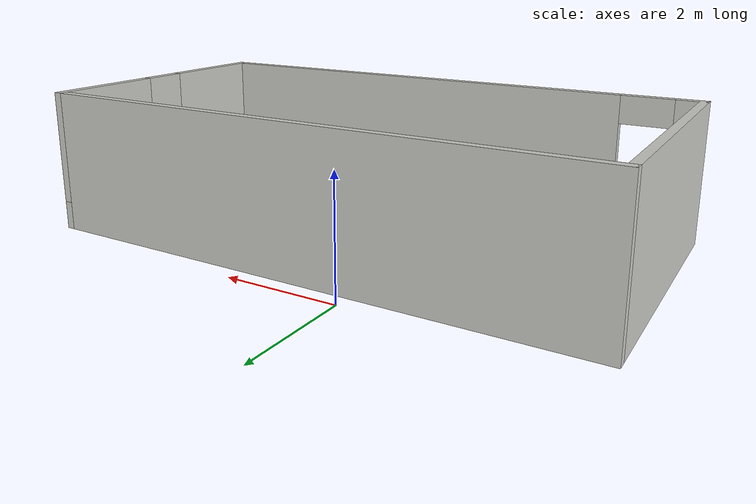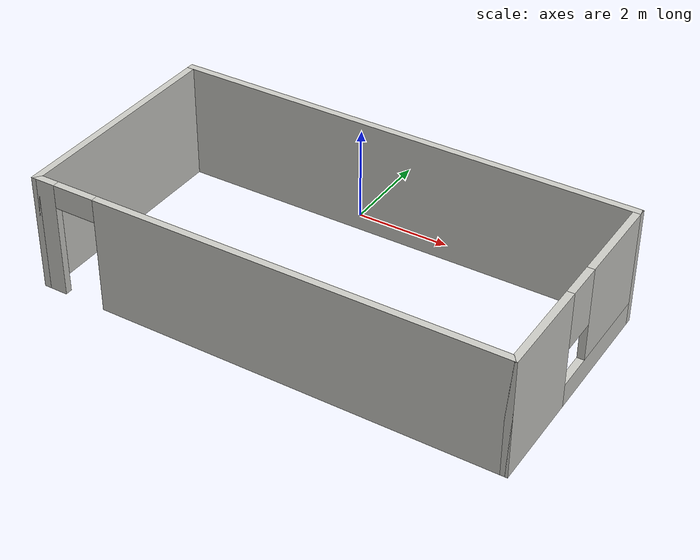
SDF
<?xml version='1.0'?>
<sdf version='1.6'>
  <model name='building'>
    <pose frame=''>1.085 -2.785 0 0 -0 0</pose>
    <link name='Wall_1'>
      <collision name='Wall_1_Collision'>
        <geometry>
          <box>
            <size>5 0.15 2.5</size>
          </box>
        </geometry>
        <pose frame=''>0 0 1.25 0 -0 0</pose>
      </collision>
      <visual name='Wall_1_Visual'>
        <pose frame=''>0 0 1.25 0 -0 0</pose>
        <geometry>
          <box>
            <size>5 0.15 2.5</size>
          </box>
        </geometry>
        <material>
          <script>
            <uri>file://media/materials/scripts/gazebo.material</uri>
            <name>Gazebo/CeilingTiled</name>
          </script>
          <ambient>0 0.333333 1 1</ambient>
        </material>
        <meta>
          <layer>0</layer>
        </meta>
      </visual>
      <pose frame=''>-4.925 0 0 0 0 -1.5708</pose>
    </link>
    <link name='Wall_2'>
      <pose frame=''>0 -2.425 0 0 -0 0</pose>
      <visual name='Wall_2_Visual_0'>
        <pose frame=''>-4.7375 0 1.25 0 -0 0</pose>
        <geometry>
          <box>
            <size>0.525 0.15 2.5</size>
          </box>
        </geometry>
        <material>
          <script>
            <uri>file://media/materials/scripts/gazebo.material</uri>
            <name>Gazebo/CeilingTiled</name>
          </script>
          <ambient>0 0.333333 1 1</ambient>
        </material>
        <meta>
          <layer>0</layer>
        </meta>
      </visual>
      <collision name='Wall_2_Collision_0'>
        <geometry>
          <box>
            <size>0.525 0.15 2.5</size>
          </box>
        </geometry>
        <pose frame=''>-4.7375 0 1.25 0 -0 0</pose>
      </collision>
      <visual name='Wall_2_Visual_1'>
        <pose frame=''>0.7125 0 1.25 0 -0 0</pose>
        <geometry>
          <box>
            <size>8.575 0.15 2.5</size>
          </box>
        </geometry>
        <material>
          <script>
            <uri>file://media/materials/scripts/gazebo.material</uri>
            <name>Gazebo/CeilingTiled</name>
          </script>
          <ambient>0 0.333333 1 1</ambient>
        </material>
        <meta>
          <layer>0</layer>
        </meta>
      </visual>
      <collision name='Wall_2_Collision_1'>
        <geometry>
          <box>
            <size>8.575 0.15 2.5</size>
          </box>
        </geometry>
        <pose frame=''>0.7125 0 1.25 0 -0 0</pose>
      </collision>
      <visual name='Wall_2_Visual_2'>
        <pose frame=''>-4.025 0 2.25 0 -0 0</pose>
        <geometry>
          <box>
            <size>0.9 0.15 0.5</size>
          </box>
        </geometry>
        <material>
          <script>
            <uri>file://media/materials/scripts/gazebo.material</uri>
            <name>Gazebo/CeilingTiled</name>
          </script>
          <ambient>0 0.333333 1 1</ambient>
        </material>
        <meta>
          <layer>0</layer>
        </meta>
      </visual>
      <collision name='Wall_2_Collision_2'>
        <geometry>
          <box>
            <size>0.9 0.15 0.5</size>
          </box>
        </geometry>
        <pose frame=''>-4.025 0 2.25 0 -0 0</pose>
      </collision>
    </link>
    <link name='Wall_3'>
      <pose frame=''>4.925 0 0 0 -0 1.5708</pose>
      <visual name='Wall_3_Visual_0'>
        <pose frame=''>-1.4475 0 1.25 0 -0 0</pose>
        <geometry>
          <box>
            <size>2.105 0.15 2.5</size>
          </box>
        </geometry>
        <material>
          <script>
            <uri>file://media/materials/scripts/gazebo.material</uri>
            <name>Gazebo/CeilingTiled</name>
          </script>
          <ambient>0 0.333333 1 1</ambient>
        </material>
        <meta>
          <layer>0</layer>
        </meta>
      </visual>
      <collision name='Wall_3_Collision_0'>
        <geometry>
          <box>
            <size>2.105 0.15 2.5</size>
          </box>
        </geometry>
        <pose frame=''>-1.4475 0 1.25 0 -0 0</pose>
      </collision>
      <visual name='Wall_3_Visual_1'>
        <pose frame=''>1.0525 0 0.25 0 -0 0</pose>
        <geometry>
          <box>
            <size>2.895 0.15 0.5</size>
          </box>
        </geometry>
        <material>
          <script>
            <uri>file://media/materials/scripts/gazebo.material</uri>
            <name>Gazebo/CeilingTiled</name>
          </script>
          <ambient>0 0.333333 1 1</ambient>
        </material>
        <meta>
          <layer>0</layer>
        </meta>
      </visual>
      <collision name='Wall_3_Collision_1'>
        <geometry>
          <box>
            <size>2.895 0.15 0.5</size>
          </box>
        </geometry>
        <pose frame=''>1.0525 0 0.25 0 -0 0</pose>
      </collision>
      <visual name='Wall_3_Visual_2'>
        <pose frame=''>1.4525 0 1.5 0 -0 0</pose>
        <geometry>
          <box>
            <size>2.095 0.15 2</size>
          </box>
        </geometry>
        <material>
          <script>
            <uri>file://media/materials/scripts/gazebo.material</uri>
            <name>Gazebo/CeilingTiled</name>
          </script>
          <ambient>0 0.333333 1 1</ambient>
        </material>
        <meta>
          <layer>0</layer>
        </meta>
      </visual>
      <collision name='Wall_3_Collision_2'>
        <geometry>
          <box>
            <size>2.095 0.15 2</size>
          </box>
        </geometry>
        <pose frame=''>1.4525 0 1.5 0 -0 0</pose>
      </collision>
      <visual name='Wall_3_Visual_3'>
        <pose frame=''>0.005 0 1.9 0 -0 0</pose>
        <geometry>
          <box>
            <size>0.8 0.15 1.2</size>
          </box>
        </geometry>
        <material>
          <script>
            <uri>file://media/materials/scripts/gazebo.material</uri>
            <name>Gazebo/CeilingTiled</name>
          </script>
          <ambient>0 0.333333 1 1</ambient>
        </material>
        <meta>
          <layer>0</layer>
        </meta>
      </visual>
      <collision name='Wall_3_Collision_3'>
        <geometry>
          <box>
            <size>0.8 0.15 1.2</size>
          </box>
        </geometry>
        <pose frame=''>0.005 0 1.9 0 -0 0</pose>
      </collision>
    </link>
    <link name='Wall_4'>
      <collision name='Wall_4_Collision'>
        <geometry>
          <box>
            <size>10 0.15 2.5</size>
          </box>
        </geometry>
        <pose frame=''>0 0 1.25 0 -0 0</pose>
      </collision>
      <visual name='Wall_4_Visual'>
        <pose frame=''>0 0 1.25 0 -0 0</pose>
        <geometry>
          <box>
            <size>10 0.15 2.5</size>
          </box>
        </geometry>
        <material>
          <script>
            <uri>file://media/materials/scripts/gazebo.material</uri>
            <name>Gazebo/CeilingTiled</name>
          </script>
          <ambient>0 0.333333 1 1</ambient>
        </material>
        <meta>
          <layer>0</layer>
        </meta>
      </visual>
      <pose frame=''>0 2.425 0 0 -0 3.14159</pose>
    </link>
    <static>1</static>
  </model>
</sdf>
